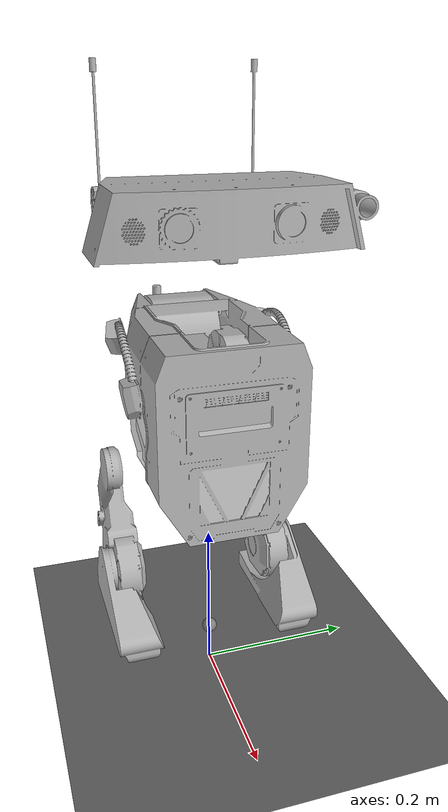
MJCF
<mujoco model="bdx">
  <option iterations="50" timestep="0.001" solver="PGS" gravity="0 0 -9.81" />

  <compiler angle="radian" meshdir="meshes" eulerseq="zyx" autolimits="true" />

  <default>
    <joint limited="true" damping="0.01" armature="0.01" frictionloss="0.01" />
    <geom condim="4" contype="1" conaffinity="15" friction="0.9 0.2 0.2" solref="0.001 2" />
    <motor ctrllimited="true" />
    <equality solref="0.001 2" />
    <default class="visualgeom">
      <geom material="visualgeom" condim="1" contype="0" conaffinity="0" />
    </default>
  </default>

  <asset>
    <mesh name="pelvis" file="pelvis.stl" scale="0.001 0.001 0.001" />
    <mesh name="left_foot" file="left_foot.stl" scale="0.001 0.001 0.001" />
    <mesh name="left_shin" file="left_shin.stl" scale="0.001 0.001 0.001" />
    <mesh name="right_foot" file="right_foot.stl" scale="0.001 0.001 0.001" />
    <mesh name="right_shin" file="right_shin.stl" scale="0.001 0.001 0.001" />
    <mesh name="ear_right" file="ear_right.stl" scale="0.001 0.001 0.001" />
    <mesh name="ear_left" file="ear_left.stl" scale="0.001 0.001 0.001" />
    <mesh name="head_body_roll" file="head_body_roll.stl" scale="0.001 0.001 0.001" />
    <texture name="texplane" type="2d" builtin="checker" rgb1=".0 .0 .0" rgb2=".8 .8 .8" width="100" height="100" />
    <material name="matplane" reflectance="0." texture="texplane" texrepeat="1 1" texuniform="true" />
    <material name="visualgeom" rgba="0.5 0.9 0.2 1" />
  </asset>

  <worldbody>
    <light directional="true" diffuse="0.4 0.4 0.4" specular="0.1 0.1 0.1" pos="0 0 5.0" dir="0 0 -1" castshadow="false" />
    <light directional="true" diffuse="0.6 0.6 0.6" specular="0.2 0.2 0.2" pos="0 0 4" dir="0 0 -1" />
    <geom name="ground" type="plane" pos="0 0 0" size="100 100 0.001" quat="1 0 0 0" material="matplane" condim="3" conaffinity="15" />
    <camera name="fixed" pos="0 -3.0 0.5519919449499777" xyaxes="1 0 0 0 0 1" />
    <camera name="track" mode="trackcom" pos="0 -3.0 0.5519919449499777" xyaxes="1 0 0 0 0 1" />
    <body name="root" pos="0 0 0.05199194494997771" quat="1 0 0 0">
      <freejoint name="root" />
      <site name="imu" size="0.01" pos="0 0 0" />
      <geom type="mesh" rgba="0.7 0.7 0.7 1" mesh="pelvis" contype="1" conaffinity="0" density="0" group="1" class="visualgeom" />
      <geom type="mesh" rgba="0.7 0.7 0.7 1" mesh="pelvis" />
      <body name="left_hip_rotation" pos="-0.033111 0.046658 0.363959">
        <inertial pos="-0.00508397 0.00309242 -0.0631043" quat="0.999573 0.0213461 0.0199274 0.00141326" mass="0.633" diaginertia="0.00533636 0.004183 0.00196963" />
        <joint name="left_hip_yaw" pos="0 0 0" axis="0 0 -1" range="-0.785398 0.785398" actuatorfrcrange="-23.7 23.7" />
        <body name="left_hip" pos="-0.0073 0.00275 -0.076">
          <inertial pos="0.0189112 0.0234713 0.000362123" quat="0.704899 0.708795 -0.00571972 -0.0263546" mass="0.633" diaginertia="0.00149816 0.00136791 0.000505934" />
          <joint name="left_hip_roll" pos="0 0 0" axis="1 0 0" range="-0.785398 0.785398" actuatorfrcrange="-23.7 23.7" />
          <body name="left_thigh" pos="0.017466 0.069601 0.000785">
            <inertial pos="-0.0341087 0.0267727 -0.0344467" quat="0.633403 0.297734 0.294346 0.650781" mass="0.633" diaginertia="0.0473468 0.0413446 0.0120747" />
            <joint name="left_hip_pitch" pos="0 0 0" axis="0 1 0" range="-0.785398 0.785398" actuatorfrcrange="-23.7 23.7" />
            <body name="left_shin" pos="-0.079306 0 -0.077708">
              <inertial pos="0.0222946 -0.0149367 -0.0900588" quat="0.708097 -0.166338 -0.130184 0.673783" mass="0.633" diaginertia="0.0117688 0.0102167 0.00215741" />
              <joint name="left_knee" pos="0 0 0" axis="0 -1 0" range="-0.785398 0.785398" actuatorfrcrange="-23.7 23.7" />
              <geom pos="0.102251 -0.119009 -0.211036" quat="1 0 0 0" type="mesh" rgba="0.7 0.7 0.7 1" mesh="left_shin" contype="1" conaffinity="0" density="0" group="1" class="visualgeom" />
              <geom type="mesh" rgba="0.7 0.7 0.7 1" mesh="left_shin" pos="0.102251 -0.119009 -0.211036" quat="1 0 0 0" />
              <body name="left_foot_link" pos="0.045 -0.0152 -0.13">
                <inertial pos="0.0317645 0.00793337 -0.0421515" quat="0.540863 0.468785 0.58167 0.386481" mass="0.678" diaginertia="0.0103795 0.00833717 0.00325637" />
                <joint name="left_ankle" pos="0 0 0" axis="0 1 0" range="-0.785398 0.785398" actuatorfrcrange="-23.7 23.7" />
                <geom pos="0.057251 -0.103809 -0.081036" quat="1 0 0 0" type="mesh" rgba="0.7 0.7 0.7 1" mesh="left_foot" contype="1" conaffinity="0" density="0" group="1" class="visualgeom" />
                <geom type="mesh" rgba="0.7 0.7 0.7 1" mesh="left_foot" pos="0.057251 -0.103809 -0.081036" quat="1 0 0 0" />
              </body>
            </body>
          </body>
        </body>
      </body>
      <body name="right_hip_rotation" pos="-0.033111 -0.046658 0.363959">
        <inertial pos="-0.00508397 -0.00309242 -0.0631043" quat="0.999573 -0.0213461 0.0199274 -0.00141326" mass="0.633" diaginertia="0.00533636 0.004183 0.00196963" />
        <joint name="right_hip_yaw" pos="0 0 0" axis="0 0 -1" range="-0.785398 0.785398" actuatorfrcrange="-23.7 23.7" />
        <body name="right_hip" pos="-0.0073 -0.00275 -0.076">
          <inertial pos="0.0189112 -0.0234713 0.000362123" quat="0.708795 0.704899 0.0263546 0.00571972" mass="0.633" diaginertia="0.00149816 0.00136791 0.000505934" />
          <joint name="right_hip_roll" pos="0 0 0" axis="1 0 0" range="-0.785398 0.785398" actuatorfrcrange="-23.7 23.7" />
          <body name="right_thigh" pos="0.017466 -0.069601 0.000785">
            <inertial pos="-0.0341087 -0.0267727 -0.0344467" quat="0.650781 0.294346 0.297734 0.633403" mass="0.633" diaginertia="0.0473468 0.0413446 0.0120747" />
            <joint name="right_hip_pitch" pos="0 0 0" axis="0 -1 0" range="-0.785398 0.785398" actuatorfrcrange="-23.7 23.7" />
            <body name="right_shin" pos="-0.079306 0 -0.077708">
              <inertial pos="0.0222946 0.0149367 -0.0900588" quat="0.673783 -0.130184 -0.166338 0.708097" mass="0.633" diaginertia="0.0117688 0.0102167 0.00215741" />
              <joint name="right_knee" pos="0 0 0" axis="0 1 0" range="-0.785398 0.785398" actuatorfrcrange="-23.7 23.7" />
              <geom pos="0.102251 0.119009 -0.211036" quat="1 0 0 0" type="mesh" rgba="0.7 0.7 0.7 1" mesh="right_shin" contype="1" conaffinity="0" density="0" group="1" class="visualgeom" />
              <geom type="mesh" rgba="0.7 0.7 0.7 1" mesh="right_shin" pos="0.102251 0.119009 -0.211036" quat="1 0 0 0" />
              <body name="right_foot_link" pos="0.045 0.0152 -0.13">
                <inertial pos="0.0317645 -0.00793337 -0.0421515" quat="0.386481 0.58167 0.468785 0.540863" mass="0.678" diaginertia="0.0103795 0.00833717 0.00325637" />
                <joint name="right_ankle" pos="0 0 0" axis="0 -1 0" range="-0.785398 0.785398" actuatorfrcrange="-23.7 23.7" />
                <geom pos="0.057251 0.103809 -0.081036" quat="1 0 0 0" type="mesh" rgba="0.7 0.7 0.7 1" mesh="right_foot" contype="1" conaffinity="0" density="0" group="1" class="visualgeom" />
                <geom type="mesh" rgba="0.7 0.7 0.7 1" mesh="right_foot" pos="0.057251 0.103809 -0.081036" quat="1 0 0 0" />
              </body>
            </body>
          </body>
        </body>
      </body>
      <body name="neck" pos="0.056339 0.0119 0.395171">
        <inertial pos="-0.0240043 -0.0164112 0.050435" quat="0.415022 -0.234316 -0.0652626 0.876694" mass="0.633" diaginertia="0.00651818 0.00640093 0.00104188" />
        <joint name="neck_pitch" pos="0 0 0" axis="0 -1 0" range="-0.785398 0.785398" actuatorfrcrange="-23.7 23.7" />
        <body name="head_body_pitch" pos="-0.065022 -0.01175 0.11088">
          <inertial pos="-0.0129682 -0.00171465 0.0277559" quat="0.975914 -0.0920927 -0.197246 0.0143444" mass="0.2" diaginertia="0.000404789 0.00034123 0.000159981" />
          <joint name="head_pitch" pos="0 0 0" axis="0 -1 0" range="-0.785398 0.785398" actuatorfrcrange="-7.3 7.3" />
          <body name="head_body_yaw" pos="0.000299 0.0007 0.02897">
            <inertial pos="0.00785461 -1.46108e-06 0.0225451" quat="0.541584 0.454629 0.454629 0.541584" mass="0.2" diaginertia="0.000559 0.000550027 0.000215973" />
            <joint name="head_yaw" pos="0 0 0" axis="0 0 1" range="-0.785398 0.785398" actuatorfrcrange="-7.3 7.3" />
            <body name="head_body_roll" pos="0.039892 0 0.02715">
              <inertial pos="-0.0339687 0.00148766 0.00242765" quat="-0.0651364 0.688995 0.064254 0.718968" mass="0.4" diaginertia="0.0807248 0.047202 0.0412992" />
              <joint name="head_roll" pos="0 0 0" axis="1 0 0" range="-0.785398 0.785398" actuatorfrcrange="-7.3 7.3" />
              <geom pos="-0.031508 -0.00085 -0.562171" quat="1 0 0 0" type="mesh" rgba="0.7 0.7 0.7 1" mesh="head_body_roll" contype="1" conaffinity="0" density="0" group="1" class="visualgeom" />
              <geom type="mesh" rgba="0.7 0.7 0.7 1" mesh="head_body_roll" pos="-0.031508 -0.00085 -0.562171" quat="1 0 0 0" />
              <body name="ear_left" pos="-0.16665 0.0683 0.001231">
                <inertial pos="0.000161565 0.0247291 0.016145" quat="0.998004 -0.0231719 0.0382937 0.0445513" mass="0.0964016" diaginertia="0.000208107 0.000200388 1.95059e-05" />
                <joint name="left_antenna" pos="0 0 0" axis="0 -1 0" range="-0.785398 0.785398" actuatorfrcrange="-0.2943 0.2943" />
                <geom pos="0.135142 -0.06915 -0.563402" quat="1 0 0 0" type="mesh" rgba="0.7 0.7 0.7 1" mesh="ear_left" contype="1" conaffinity="0" density="0" group="1" class="visualgeom" />
                <geom type="mesh" rgba="0.7 0.7 0.7 1" mesh="ear_left" pos="0.135142 -0.06915 -0.563402" quat="1 0 0 0" />
              </body>
              <body name="ear_right" pos="-0.16665 -0.0697 0.001231">
                <inertial pos="0.000161565 -0.0247291 0.016145" quat="0.998004 0.0231719 0.0382937 -0.0445513" mass="0.0964016" diaginertia="0.000208107 0.000200388 1.95059e-05" />
                <joint name="right_antenna" pos="0 0 0" axis="0 -1 0" range="-0.785398 0.785398" actuatorfrcrange="-0.2943 0.2943" />
                <geom pos="0.135142 0.06885 -0.563402" type="mesh" rgba="0.7 0.7 0.7 1" mesh="ear_right" contype="1" conaffinity="0" density="0" group="1" class="visualgeom" />
                <geom type="mesh" rgba="0.7 0.7 0.7 1" mesh="ear_right" pos="0.135142 0.06885 -0.563402" />
              </body>
            </body>
          </body>
        </body>
      </body>
    </body>
  </worldbody>

  <actuator>
    <motor name="left_hip_yaw" joint="left_hip_yaw" ctrllimited="true" ctrlrange="-23.7 23.7" gear="1" />
    <motor name="left_hip_roll" joint="left_hip_roll" ctrllimited="true" ctrlrange="-23.7 23.7" gear="1" />
    <motor name="left_hip_pitch" joint="left_hip_pitch" ctrllimited="true" ctrlrange="-23.7 23.7" gear="1" />
    <motor name="left_knee" joint="left_knee" ctrllimited="true" ctrlrange="-23.7 23.7" gear="1" />
    <motor name="left_ankle" joint="left_ankle" ctrllimited="true" ctrlrange="-23.7 23.7" gear="1" />
    <motor name="right_hip_yaw" joint="right_hip_yaw" ctrllimited="true" ctrlrange="-23.7 23.7" gear="1" />
    <motor name="right_hip_roll" joint="right_hip_roll" ctrllimited="true" ctrlrange="-23.7 23.7" gear="1" />
    <motor name="right_hip_pitch" joint="right_hip_pitch" ctrllimited="true" ctrlrange="-23.7 23.7" gear="1" />
    <motor name="right_knee" joint="right_knee" ctrllimited="true" ctrlrange="-23.7 23.7" gear="1" />
    <motor name="right_ankle" joint="right_ankle" ctrllimited="true" ctrlrange="-23.7 23.7" gear="1" />
    <motor name="neck_pitch" joint="neck_pitch" ctrllimited="true" ctrlrange="-23.7 23.7" gear="1" />
    <motor name="head_pitch" joint="head_pitch" ctrllimited="true" ctrlrange="-7.3 7.3" gear="1" />
    <motor name="head_yaw" joint="head_yaw" ctrllimited="true" ctrlrange="-7.3 7.3" gear="1" />
    <motor name="head_roll" joint="head_roll" ctrllimited="true" ctrlrange="-7.3 7.3" gear="1" />
    <motor name="left_antenna" joint="left_antenna" ctrllimited="true" ctrlrange="-0.2943 0.2943" gear="1" />
    <motor name="right_antenna" joint="right_antenna" ctrllimited="true" ctrlrange="-0.2943 0.2943" gear="1" />
  </actuator>

  <sensor>
    <actuatorpos name="left_hip_yaw_p" actuator="left_hip_yaw" />
    <actuatorvel name="left_hip_yaw_v" actuator="left_hip_yaw" />
    <actuatorfrc name="left_hip_yaw_f" actuator="left_hip_yaw" noise="0.001" />
    <actuatorpos name="left_hip_roll_p" actuator="left_hip_roll" />
    <actuatorvel name="left_hip_roll_v" actuator="left_hip_roll" />
    <actuatorfrc name="left_hip_roll_f" actuator="left_hip_roll" noise="0.001" />
    <actuatorpos name="left_hip_pitch_p" actuator="left_hip_pitch" />
    <actuatorvel name="left_hip_pitch_v" actuator="left_hip_pitch" />
    <actuatorfrc name="left_hip_pitch_f" actuator="left_hip_pitch" noise="0.001" />
    <actuatorpos name="left_knee_p" actuator="left_knee" />
    <actuatorvel name="left_knee_v" actuator="left_knee" />
    <actuatorfrc name="left_knee_f" actuator="left_knee" noise="0.001" />
    <actuatorpos name="left_ankle_p" actuator="left_ankle" />
    <actuatorvel name="left_ankle_v" actuator="left_ankle" />
    <actuatorfrc name="left_ankle_f" actuator="left_ankle" noise="0.001" />
    <actuatorpos name="right_hip_yaw_p" actuator="right_hip_yaw" />
    <actuatorvel name="right_hip_yaw_v" actuator="right_hip_yaw" />
    <actuatorfrc name="right_hip_yaw_f" actuator="right_hip_yaw" noise="0.001" />
    <actuatorpos name="right_hip_roll_p" actuator="right_hip_roll" />
    <actuatorvel name="right_hip_roll_v" actuator="right_hip_roll" />
    <actuatorfrc name="right_hip_roll_f" actuator="right_hip_roll" noise="0.001" />
    <actuatorpos name="right_hip_pitch_p" actuator="right_hip_pitch" />
    <actuatorvel name="right_hip_pitch_v" actuator="right_hip_pitch" />
    <actuatorfrc name="right_hip_pitch_f" actuator="right_hip_pitch" noise="0.001" />
    <actuatorpos name="right_knee_p" actuator="right_knee" />
    <actuatorvel name="right_knee_v" actuator="right_knee" />
    <actuatorfrc name="right_knee_f" actuator="right_knee" noise="0.001" />
    <actuatorpos name="right_ankle_p" actuator="right_ankle" />
    <actuatorvel name="right_ankle_v" actuator="right_ankle" />
    <actuatorfrc name="right_ankle_f" actuator="right_ankle" noise="0.001" />
    <actuatorpos name="neck_pitch_p" actuator="neck_pitch" />
    <actuatorvel name="neck_pitch_v" actuator="neck_pitch" />
    <actuatorfrc name="neck_pitch_f" actuator="neck_pitch" noise="0.001" />
    <actuatorpos name="head_pitch_p" actuator="head_pitch" />
    <actuatorvel name="head_pitch_v" actuator="head_pitch" />
    <actuatorfrc name="head_pitch_f" actuator="head_pitch" noise="0.001" />
    <actuatorpos name="head_yaw_p" actuator="head_yaw" />
    <actuatorvel name="head_yaw_v" actuator="head_yaw" />
    <actuatorfrc name="head_yaw_f" actuator="head_yaw" noise="0.001" />
    <actuatorpos name="head_roll_p" actuator="head_roll" />
    <actuatorvel name="head_roll_v" actuator="head_roll" />
    <actuatorfrc name="head_roll_f" actuator="head_roll" noise="0.001" />
    <actuatorpos name="left_antenna_p" actuator="left_antenna" />
    <actuatorvel name="left_antenna_v" actuator="left_antenna" />
    <actuatorfrc name="left_antenna_f" actuator="left_antenna" noise="0.001" />
    <actuatorpos name="right_antenna_p" actuator="right_antenna" />
    <actuatorvel name="right_antenna_v" actuator="right_antenna" />
    <actuatorfrc name="right_antenna_f" actuator="right_antenna" noise="0.001" />
    <framequat name="orientation" objtype="site" noise="0.001" objname="imu" />
    <gyro name="angular-velocity" site="imu" noise="0.005" cutoff="34.9" />
  </sensor>
</mujoco>
